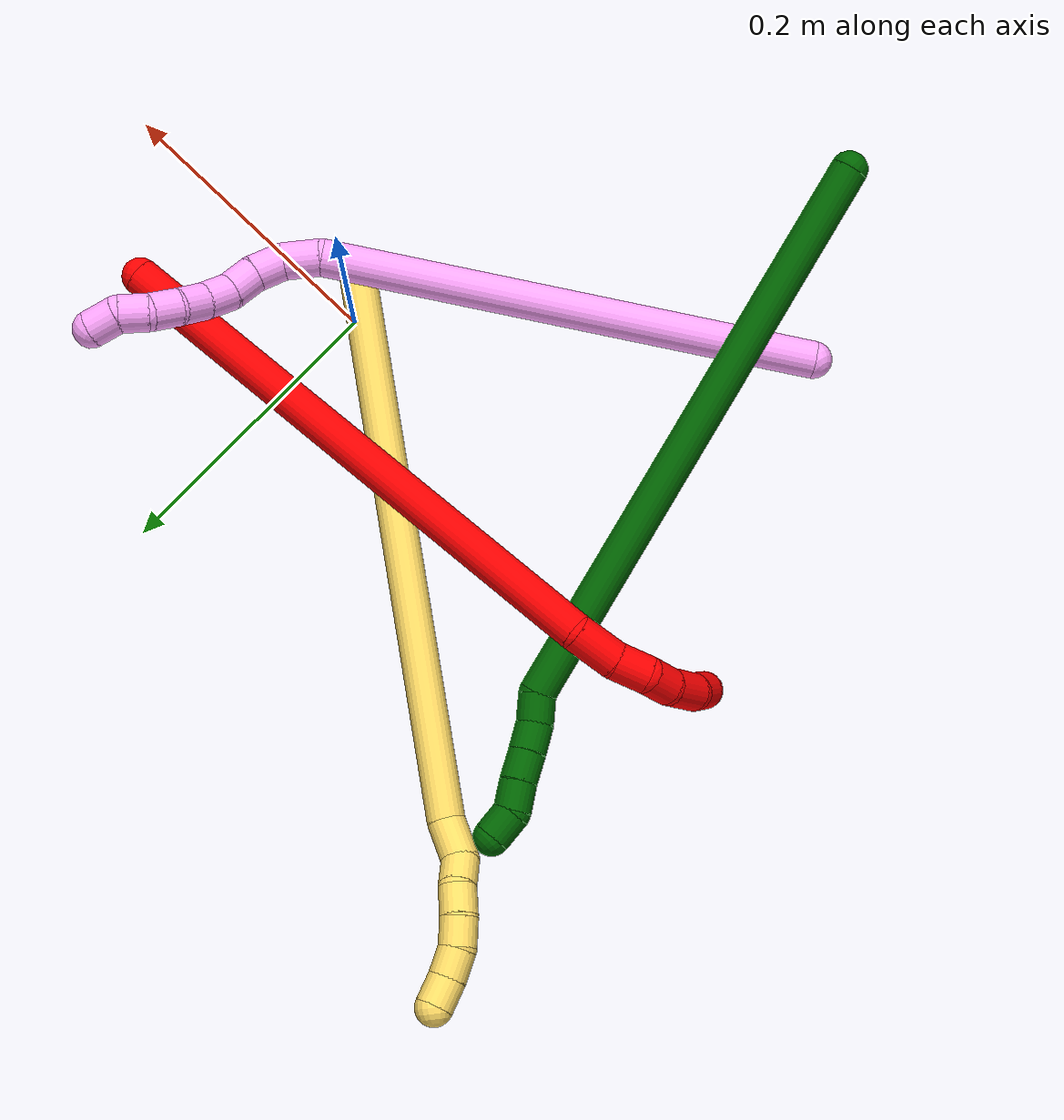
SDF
<sdf version="1.7">
 <world name="default">
  <model name="photoneo_s_sensor">
   <static>1</static>
   <pose>0 0 2 1.57079 1.57079 3.14159</pose>
   <link name="link">
    <inertial><mass>0.1</mass></inertial>
    <sensor name="sensor" type="depth">
     <update_rate>30</update_rate>
     <camera>
      <horizontal_fov>1.22</horizontal_fov>
      <image><width>1920</width><height>1200</height><format>B8G8R8</format></image>
      <clip><near>0.1</near><far>4</far></clip>
      <depth_camera><output>points</output></depth_camera>
     </camera>
     <plugin name="camera_plugin" filename="libgazebo_ros_depth_camera.so">
      <baseline>0.2</baseline>
      <alwaysOn>1</alwaysOn>
      <updateRate>0.0</updateRate>
      <cameraName>camera_ir</cameraName>
      <imageTopicName>/camera/color/image_raw</imageTopicName>
      <cameraInfoTopicName>/camera/color/camera_info</cameraInfoTopicName>
      <depthImageTopicName>/camera/depth/image_raw</depthImageTopicName>
      <depthImageCameraInfoTopicName>/camera/depth/camera_info</depthImageCameraInfoTopicName>
      <pointCloudTopicName>/camera/depth/points</pointCloudTopicName>
      <frameName>fr_optical</frameName>
      <pointCloudCutoff>0.1</pointCloudCutoff>
      <pointCloudCutoffMax>2.0</pointCloudCutoffMax>
      <distortionK1>0</distortionK1>
      <distortionK2>0</distortionK2>
      <distortionK3>0</distortionK3>
      <distortionT1>0</distortionT1>
      <distortionT2>0</distortionT2>
      <CxPrime>0</CxPrime>
      <Cx>0</Cx>
      <Cy>0</Cy>
      <focalLength>0</focalLength>
      <hackBaseline>0</hackBaseline>
     </plugin>
    </sensor>
   </link>
  </model>
  <model name="bin">
   <static>1</static>
   <link name="bottom">
    <collision name="collision-bottom">
     <pose>0 0 -0.01 0 -0 0</pose>
     <geometry><box><size>0.8 0.6 0.02</size></box></geometry>
     <surface>
      <friction><ode><mu>100</mu><mu2>100</mu2></ode></friction>
      <contact><collide_bitmask>65535</collide_bitmask></contact>
     </surface>
    </collision>
   </link>
   <link name="west_wall">
    <collision name="collision-west_wall">
     <pose>-0.41 0 0.1 0 -0 0</pose>
     <geometry><box><size>0.02 0.6 0.2</size></box></geometry>
     <surface>
      <friction><ode><mu>100</mu><mu2>100</mu2></ode></friction>
      <contact><collide_bitmask>65535</collide_bitmask></contact>
     </surface>
    </collision>
   </link>
   <link name="east_wall">
    <collision name="collision-east_wall">
     <pose>0.41 0 0.1 0 -0 0</pose>
     <geometry><box><size>0.02 0.6 0.2</size></box></geometry>
     <surface>
      <friction><ode><mu>100</mu><mu2>100</mu2></ode></friction>
      <contact><collide_bitmask>65535</collide_bitmask></contact>
     </surface>
    </collision>
   </link>
   <link name="south_wall">
    <collision name="collision-south_wall">
     <pose>0 -0.31 0.1 0 -0 0</pose>
     <geometry><box><size>0.8 0.02 0.2</size></box></geometry>
     <surface>
      <friction><ode><mu>100</mu><mu2>100</mu2></ode></friction>
      <contact><collide_bitmask>65535</collide_bitmask></contact>
     </surface>
    </collision>
   </link>
   <link name="north_wall">
    <collision name="collision-north_wall">
     <pose>0 0.31 0.1 0 -0 0</pose>
     <geometry><box><size>0.8 0.02 0.2</size></box></geometry>
     <surface>
      <friction><ode><mu>100</mu><mu2>100</mu2></ode></friction>
      <contact><collide_bitmask>65535</collide_bitmask></contact>
     </surface>
    </collision>
   </link>
  </model>
  <model name="2">
   <static>0</static>
   <link name="2">
    <collision name="collision-cylinder-e_1_1_4">
     <pose>-0.095447 -0.019869 -0.161637 3.01928 -0.530127 -2.69788</pose>
     <geometry><cylinder><radius>0.0125</radius><length>0.377526</length></cylinder></geometry>
     <surface>
      <friction><ode><mu>1.16</mu><mu2>1.16</mu2><slip1>0</slip1><slip2>0</slip2></ode></friction>
      <contact><ode><kp>1e+06</kp><kd>1</kd><max_vel>0</max_vel><min_depth>0.001</min_depth></ode></contact>
     </surface>
    </collision>
    <visual name="visual-cylinder-e_1_1_4">
     <pose>-0.095447 -0.019869 -0.161637 3.01928 -0.530127 -2.69788</pose>
     <geometry><cylinder><radius>0.0125</radius><length>0.377526</length></cylinder></geometry>
     <material><ambient>1 0 0 1</ambient></material>
    </visual>
    <collision name="collision-cylinder-e_2_4_5">
     <pose>-0.202606 -0.03852 -0.333355 -3.02144 -0.856577 2.87962</pose>
     <geometry><cylinder><radius>0.0125</radius><length>0.031002</length></cylinder></geometry>
     <surface>
      <friction><ode><mu>1.16</mu><mu2>1.16</mu2><slip1>0</slip1><slip2>0</slip2></ode></friction>
      <contact><ode><kp>1e+06</kp><kd>1</kd><max_vel>0</max_vel><min_depth>0.001</min_depth></ode></contact>
     </surface>
    </collision>
    <visual name="visual-cylinder-e_2_4_5">
     <pose>-0.202606 -0.03852 -0.333355 -3.02144 -0.856577 2.87962</pose>
     <geometry><cylinder><radius>0.0125</radius><length>0.031002</length></cylinder></geometry>
     <material><ambient>1 0 0 1</ambient></material>
    </visual>
    <collision name="collision-cylinder-e_3_5_6">
     <pose>-0.222318 -0.034117 -0.351203 -2.75236 -0.761257 2.22617</pose>
     <geometry><cylinder><radius>0.0125</radius><length>0.023195</length></cylinder></geometry>
     <surface>
      <friction><ode><mu>1.16</mu><mu2>1.16</mu2><slip1>0</slip1><slip2>0</slip2></ode></friction>
      <contact><ode><kp>1e+06</kp><kd>1</kd><max_vel>0</max_vel><min_depth>0.001</min_depth></ode></contact>
     </surface>
    </collision>
    <visual name="visual-cylinder-e_3_5_6">
     <pose>-0.222318 -0.034117 -0.351203 -2.75236 -0.761257 2.22617</pose>
     <geometry><cylinder><radius>0.0125</radius><length>0.023195</length></cylinder></geometry>
     <material><ambient>1 0 0 1</ambient></material>
    </visual>
    <collision name="collision-cylinder-e_4_6_7">
     <pose>-0.239754 -0.02749 -0.361431 -2.1913 -1.14935 1.79893</pose>
     <geometry><cylinder><radius>0.0125</radius><length>0.02068</length></cylinder></geometry>
     <surface>
      <friction><ode><mu>1.16</mu><mu2>1.16</mu2><slip1>0</slip1><slip2>0</slip2></ode></friction>
      <contact><ode><kp>1e+06</kp><kd>1</kd><max_vel>0</max_vel><min_depth>0.001</min_depth></ode></contact>
     </surface>
    </collision>
    <visual name="visual-cylinder-e_4_6_7">
     <pose>-0.239754 -0.02749 -0.361431 -2.1913 -1.14935 1.79893</pose>
     <geometry><cylinder><radius>0.0125</radius><length>0.02068</length></cylinder></geometry>
     <material><ambient>1 0 0 1</ambient></material>
    </visual>
    <collision name="collision-cylinder-e_5_7_8">
     <pose>-0.26088 -0.017034 -0.364435 -1.64823 -1.02904 1.09674</pose>
     <geometry><cylinder><radius>0.0125</radius><length>0.027288</length></cylinder></geometry>
     <surface>
      <friction><ode><mu>1.16</mu><mu2>1.16</mu2><slip1>0</slip1><slip2>0</slip2></ode></friction>
      <contact><ode><kp>1e+06</kp><kd>1</kd><max_vel>0</max_vel><min_depth>0.001</min_depth></ode></contact>
     </surface>
    </collision>
    <visual name="visual-cylinder-e_5_7_8">
     <pose>-0.26088 -0.017034 -0.364435 -1.64823 -1.02904 1.09674</pose>
     <geometry><cylinder><radius>0.0125</radius><length>0.027288</length></cylinder></geometry>
     <material><ambient>1 0 0 1</ambient></material>
    </visual>
    <collision name="collision-cylinder-e_6_8_2">
     <pose>-0.280403 -0.004183 -0.362206 -1.12727 -0.881058 0.579158</pose>
     <geometry><cylinder><radius>0.0125</radius><length>0.020309</length></cylinder></geometry>
     <surface>
      <friction><ode><mu>1.16</mu><mu2>1.16</mu2><slip1>0</slip1><slip2>0</slip2></ode></friction>
      <contact><ode><kp>1e+06</kp><kd>1</kd><max_vel>0</max_vel><min_depth>0.001</min_depth></ode></contact>
     </surface>
    </collision>
    <visual name="visual-cylinder-e_6_8_2">
     <pose>-0.280403 -0.004183 -0.362206 -1.12727 -0.881058 0.579158</pose>
     <geometry><cylinder><radius>0.0125</radius><length>0.020309</length></cylinder></geometry>
     <material><ambient>1 0 0 1</ambient></material>
    </visual>
    <collision name="collision-sphere-2">
     <pose>-0.288237 0.001654 -0.359433 0 -0 0</pose>
     <geometry><sphere><radius>0.0125</radius></sphere></geometry>
     <surface>
      <friction><ode><mu>1.16</mu><mu2>1.16</mu2><slip1>0</slip1><slip2>0</slip2></ode></friction>
      <contact><ode><kp>1e+06</kp><kd>1</kd><max_vel>0</max_vel><min_depth>0.001</min_depth></ode></contact>
     </surface>
    </collision>
    <visual name="visual-sphere-2">
     <pose>-0.288237 0.001654 -0.359433 0 -0 0</pose>
     <geometry><sphere><radius>0.0125</radius></sphere></geometry>
     <material><ambient>1 0 0 1</ambient></material>
    </visual>
    <collision name="collision-sphere-4">
     <pose>-0.190893 -0.039737 -0.323275 0 -0 0</pose>
     <geometry><sphere><radius>0.0125</radius></sphere></geometry>
     <surface>
      <friction><ode><mu>1.16</mu><mu2>1.16</mu2><slip1>0</slip1><slip2>0</slip2></ode></friction>
      <contact><ode><kp>1e+06</kp><kd>1</kd><max_vel>0</max_vel><min_depth>0.001</min_depth></ode></contact>
     </surface>
    </collision>
    <visual name="visual-sphere-4">
     <pose>-0.190893 -0.039737 -0.323275 0 -0 0</pose>
     <geometry><sphere><radius>0.0125</radius></sphere></geometry>
     <material><ambient>1 0 0 1</ambient></material>
    </visual>
    <collision name="collision-sphere-1">
     <geometry><sphere><radius>0.0125</radius></sphere></geometry>
     <surface>
      <friction><ode><mu>1.16</mu><mu2>1.16</mu2><slip1>0</slip1><slip2>0</slip2></ode></friction>
      <contact><ode><kp>1e+06</kp><kd>1</kd><max_vel>0</max_vel><min_depth>0.001</min_depth></ode></contact>
     </surface>
    </collision>
    <visual name="visual-sphere-1">
     <geometry><sphere><radius>0.0125</radius></sphere></geometry>
     <material><ambient>1 0 0 1</ambient></material>
    </visual>
    <collision name="collision-sphere-8">
     <pose>-0.27257 -0.010019 -0.364979 0 -0 0</pose>
     <geometry><sphere><radius>0.0125</radius></sphere></geometry>
     <surface>
      <friction><ode><mu>1.16</mu><mu2>1.16</mu2><slip1>0</slip1><slip2>0</slip2></ode></friction>
      <contact><ode><kp>1e+06</kp><kd>1</kd><max_vel>0</max_vel><min_depth>0.001</min_depth></ode></contact>
     </surface>
    </collision>
    <visual name="visual-sphere-8">
     <pose>-0.27257 -0.010019 -0.364979 0 -0 0</pose>
     <geometry><sphere><radius>0.0125</radius></sphere></geometry>
     <material><ambient>1 0 0 1</ambient></material>
    </visual>
    <collision name="collision-sphere-5">
     <pose>-0.214318 -0.037303 -0.343435 0 -0 0</pose>
     <geometry><sphere><radius>0.0125</radius></sphere></geometry>
     <surface>
      <friction><ode><mu>1.16</mu><mu2>1.16</mu2><slip1>0</slip1><slip2>0</slip2></ode></friction>
      <contact><ode><kp>1e+06</kp><kd>1</kd><max_vel>0</max_vel><min_depth>0.001</min_depth></ode></contact>
     </surface>
    </collision>
    <visual name="visual-sphere-5">
     <pose>-0.214318 -0.037303 -0.343435 0 -0 0</pose>
     <geometry><sphere><radius>0.0125</radius></sphere></geometry>
     <material><ambient>1 0 0 1</ambient></material>
    </visual>
    <collision name="collision-sphere-6">
     <pose>-0.230319 -0.030931 -0.358972 0 -0 0</pose>
     <geometry><sphere><radius>0.0125</radius></sphere></geometry>
     <surface>
      <friction><ode><mu>1.16</mu><mu2>1.16</mu2><slip1>0</slip1><slip2>0</slip2></ode></friction>
      <contact><ode><kp>1e+06</kp><kd>1</kd><max_vel>0</max_vel><min_depth>0.001</min_depth></ode></contact>
     </surface>
    </collision>
    <visual name="visual-sphere-6">
     <pose>-0.230319 -0.030931 -0.358972 0 -0 0</pose>
     <geometry><sphere><radius>0.0125</radius></sphere></geometry>
     <material><ambient>1 0 0 1</ambient></material>
    </visual>
    <collision name="collision-sphere-7">
     <pose>-0.24919 -0.024048 -0.363891 0 -0 0</pose>
     <geometry><sphere><radius>0.0125</radius></sphere></geometry>
     <surface>
      <friction><ode><mu>1.16</mu><mu2>1.16</mu2><slip1>0</slip1><slip2>0</slip2></ode></friction>
      <contact><ode><kp>1e+06</kp><kd>1</kd><max_vel>0</max_vel><min_depth>0.001</min_depth></ode></contact>
     </surface>
    </collision>
    <visual name="visual-sphere-7">
     <pose>-0.24919 -0.024048 -0.363891 0 -0 0</pose>
     <geometry><sphere><radius>0.0125</radius></sphere></geometry>
     <material><ambient>1 0 0 1</ambient></material>
    </visual>
    <inertial>
     <pose>-0.130486 -0.02121 -0.208557 0 -0 0</pose>
     <mass>0.5</mass>
     <inertia>
      <ixx>-0.005192</ixx>
      <ixy>0</ixy>
      <ixz>0</ixz>
      <iyy>0.002499</iyy>
      <iyz>0</iyz>
      <izz>0.002726</izz>
     </inertia>
    </inertial>
   </link>
   <pose>0.114908 0.08169 0.040193 -2.74317 -0.91797 -0.177213</pose>
  </model>
  <model name="4">
   <static>0</static>
   <link name="4">
    <collision name="collision-cylinder-e_1_1_4">
     <pose>0.116182 0.033681 -0.113941 -2.85418 0.774196 -2.45943</pose>
     <geometry><cylinder><radius>0.0125</radius><length>0.332356</length></cylinder></geometry>
     <surface>
      <friction><ode><mu>1.16</mu><mu2>1.16</mu2><slip1>0</slip1><slip2>0</slip2></ode></friction>
      <contact><ode><kp>1e+06</kp><kd>1</kd><max_vel>0</max_vel><min_depth>0.001</min_depth></ode></contact>
     </surface>
    </collision>
    <visual name="visual-cylinder-e_1_1_4">
     <pose>0.116182 0.033681 -0.113941 -2.85418 0.774196 -2.45943</pose>
     <geometry><cylinder><radius>0.0125</radius><length>0.332356</length></cylinder></geometry>
     <material><ambient>1 0.65098 0.996078 1</ambient></material>
    </visual>
    <collision name="collision-cylinder-e_2_4_5">
     <pose>0.241101 0.073817 -0.234927 -2.39986 0.740671 -1.56923</pose>
     <geometry><cylinder><radius>0.0125</radius><length>0.025895</length></cylinder></geometry>
     <surface>
      <friction><ode><mu>1.16</mu><mu2>1.16</mu2><slip1>0</slip1><slip2>0</slip2></ode></friction>
      <contact><ode><kp>1e+06</kp><kd>1</kd><max_vel>0</max_vel><min_depth>0.001</min_depth></ode></contact>
     </surface>
    </collision>
    <visual name="visual-cylinder-e_2_4_5">
     <pose>0.241101 0.073817 -0.234927 -2.39986 0.740671 -1.56923</pose>
     <geometry><cylinder><radius>0.0125</radius><length>0.025895</length></cylinder></geometry>
     <material><ambient>1 0.65098 0.996078 1</ambient></material>
    </visual>
    <collision name="collision-cylinder-e_3_5_6">
     <pose>0.259043 0.08537 -0.243465 -1.8556 1.04737 -1.31332</pose>
     <geometry><cylinder><radius>0.0125</radius><length>0.021256</length></cylinder></geometry>
     <surface>
      <friction><ode><mu>1.16</mu><mu2>1.16</mu2><slip1>0</slip1><slip2>0</slip2></ode></friction>
      <contact><ode><kp>1e+06</kp><kd>1</kd><max_vel>0</max_vel><min_depth>0.001</min_depth></ode></contact>
     </surface>
    </collision>
    <visual name="visual-cylinder-e_3_5_6">
     <pose>0.259043 0.08537 -0.243465 -1.8556 1.04737 -1.31332</pose>
     <geometry><cylinder><radius>0.0125</radius><length>0.021256</length></cylinder></geometry>
     <material><ambient>1 0.65098 0.996078 1</ambient></material>
    </visual>
    <collision name="collision-cylinder-e_4_6_7">
     <pose>0.277049 0.095346 -0.243586 -1.29662 1.04852 -0.825718</pose>
     <geometry><cylinder><radius>0.0125</radius><length>0.020311</length></cylinder></geometry>
     <surface>
      <friction><ode><mu>1.16</mu><mu2>1.16</mu2><slip1>0</slip1><slip2>0</slip2></ode></friction>
      <contact><ode><kp>1e+06</kp><kd>1</kd><max_vel>0</max_vel><min_depth>0.001</min_depth></ode></contact>
     </surface>
    </collision>
    <visual name="visual-cylinder-e_4_6_7">
     <pose>0.277049 0.095346 -0.243586 -1.29662 1.04852 -0.825718</pose>
     <geometry><cylinder><radius>0.0125</radius><length>0.020311</length></cylinder></geometry>
     <material><ambient>1 0.65098 0.996078 1</ambient></material>
    </visual>
    <collision name="collision-cylinder-e_5_7_8">
     <pose>0.295659 0.102517 -0.242291 -1.6041 1.34087 -1.37342</pose>
     <geometry><cylinder><radius>0.0125</radius><length>0.020146</length></cylinder></geometry>
     <surface>
      <friction><ode><mu>1.16</mu><mu2>1.16</mu2><slip1>0</slip1><slip2>0</slip2></ode></friction>
      <contact><ode><kp>1e+06</kp><kd>1</kd><max_vel>0</max_vel><min_depth>0.001</min_depth></ode></contact>
     </surface>
    </collision>
    <visual name="visual-cylinder-e_5_7_8">
     <pose>0.295659 0.102517 -0.242291 -1.6041 1.34087 -1.37342</pose>
     <geometry><cylinder><radius>0.0125</radius><length>0.020146</length></cylinder></geometry>
     <material><ambient>1 0.65098 0.996078 1</ambient></material>
    </visual>
    <collision name="collision-cylinder-e_6_8_9">
     <pose>0.31545 0.105457 -0.242605 -1.92331 1.50197 -1.85793</pose>
     <geometry><cylinder><radius>0.0125</radius><length>0.020015</length></cylinder></geometry>
     <surface>
      <friction><ode><mu>1.16</mu><mu2>1.16</mu2><slip1>0</slip1><slip2>0</slip2></ode></friction>
      <contact><ode><kp>1e+06</kp><kd>1</kd><max_vel>0</max_vel><min_depth>0.001</min_depth></ode></contact>
     </surface>
    </collision>
    <visual name="visual-cylinder-e_6_8_9">
     <pose>0.31545 0.105457 -0.242605 -1.92331 1.50197 -1.85793</pose>
     <geometry><cylinder><radius>0.0125</radius><length>0.020015</length></cylinder></geometry>
     <material><ambient>1 0.65098 0.996078 1</ambient></material>
    </visual>
    <collision name="collision-cylinder-e_7_9_10">
     <pose>0.335026 0.108174 -0.244806 -2.32945 1.28165 -2.09567</pose>
     <geometry><cylinder><radius>0.0125</radius><length>0.020015</length></cylinder></geometry>
     <surface>
      <friction><ode><mu>1.16</mu><mu2>1.16</mu2><slip1>0</slip1><slip2>0</slip2></ode></friction>
      <contact><ode><kp>1e+06</kp><kd>1</kd><max_vel>0</max_vel><min_depth>0.001</min_depth></ode></contact>
     </surface>
    </collision>
    <visual name="visual-cylinder-e_7_9_10">
     <pose>0.335026 0.108174 -0.244806 -2.32945 1.28165 -2.09567</pose>
     <geometry><cylinder><radius>0.0125</radius><length>0.020015</length></cylinder></geometry>
     <material><ambient>1 0.65098 0.996078 1</ambient></material>
    </visual>
    <collision name="collision-cylinder-e_8_10_11">
     <pose>0.35265 0.113713 -0.251617 -2.52063 0.932322 -2.00622</pose>
     <geometry><cylinder><radius>0.0125</radius><length>0.020006</length></cylinder></geometry>
     <surface>
      <friction><ode><mu>1.16</mu><mu2>1.16</mu2><slip1>0</slip1><slip2>0</slip2></ode></friction>
      <contact><ode><kp>1e+06</kp><kd>1</kd><max_vel>0</max_vel><min_depth>0.001</min_depth></ode></contact>
     </surface>
    </collision>
    <visual name="visual-cylinder-e_8_10_11">
     <pose>0.35265 0.113713 -0.251617 -2.52063 0.932322 -2.00622</pose>
     <geometry><cylinder><radius>0.0125</radius><length>0.020006</length></cylinder></geometry>
     <material><ambient>1 0.65098 0.996078 1</ambient></material>
    </visual>
    <collision name="collision-cylinder-e_9_11_2">
     <pose>0.366871 0.124656 -0.258884 -1.88366 0.667242 -0.889131</pose>
     <geometry><cylinder><radius>0.0125</radius><length>0.02</length></cylinder></geometry>
     <surface>
      <friction><ode><mu>1.16</mu><mu2>1.16</mu2><slip1>0</slip1><slip2>0</slip2></ode></friction>
      <contact><ode><kp>1e+06</kp><kd>1</kd><max_vel>0</max_vel><min_depth>0.001</min_depth></ode></contact>
     </surface>
    </collision>
    <visual name="visual-cylinder-e_9_11_2">
     <pose>0.366871 0.124656 -0.258884 -1.88366 0.667242 -0.889131</pose>
     <geometry><cylinder><radius>0.0125</radius><length>0.02</length></cylinder></geometry>
     <material><ambient>1 0.65098 0.996078 1</ambient></material>
    </visual>
    <collision name="collision-sphere-2">
     <pose>0.373059 0.13213 -0.261301 0 -0 0</pose>
     <geometry><sphere><radius>0.0125</radius></sphere></geometry>
     <surface>
      <friction><ode><mu>1.16</mu><mu2>1.16</mu2><slip1>0</slip1><slip2>0</slip2></ode></friction>
      <contact><ode><kp>1e+06</kp><kd>1</kd><max_vel>0</max_vel><min_depth>0.001</min_depth></ode></contact>
     </surface>
    </collision>
    <visual name="visual-sphere-2">
     <pose>0.373059 0.13213 -0.261301 0 -0 0</pose>
     <geometry><sphere><radius>0.0125</radius></sphere></geometry>
     <material><ambient>1 0.65098 0.996078 1</ambient></material>
    </visual>
    <collision name="collision-sphere-11">
     <pose>0.360683 0.117182 -0.256466 0 -0 0</pose>
     <geometry><sphere><radius>0.0125</radius></sphere></geometry>
     <surface>
      <friction><ode><mu>1.16</mu><mu2>1.16</mu2><slip1>0</slip1><slip2>0</slip2></ode></friction>
      <contact><ode><kp>1e+06</kp><kd>1</kd><max_vel>0</max_vel><min_depth>0.001</min_depth></ode></contact>
     </surface>
    </collision>
    <visual name="visual-sphere-11">
     <pose>0.360683 0.117182 -0.256466 0 -0 0</pose>
     <geometry><sphere><radius>0.0125</radius></sphere></geometry>
     <material><ambient>1 0.65098 0.996078 1</ambient></material>
    </visual>
    <collision name="collision-sphere-10">
     <pose>0.344618 0.110245 -0.246769 0 -0 0</pose>
     <geometry><sphere><radius>0.0125</radius></sphere></geometry>
     <surface>
      <friction><ode><mu>1.16</mu><mu2>1.16</mu2><slip1>0</slip1><slip2>0</slip2></ode></friction>
      <contact><ode><kp>1e+06</kp><kd>1</kd><max_vel>0</max_vel><min_depth>0.001</min_depth></ode></contact>
     </surface>
    </collision>
    <visual name="visual-sphere-10">
     <pose>0.344618 0.110245 -0.246769 0 -0 0</pose>
     <geometry><sphere><radius>0.0125</radius></sphere></geometry>
     <material><ambient>1 0.65098 0.996078 1</ambient></material>
    </visual>
    <collision name="collision-sphere-9">
     <pose>0.325434 0.106103 -0.242843 0 -0 0</pose>
     <geometry><sphere><radius>0.0125</radius></sphere></geometry>
     <surface>
      <friction><ode><mu>1.16</mu><mu2>1.16</mu2><slip1>0</slip1><slip2>0</slip2></ode></friction>
      <contact><ode><kp>1e+06</kp><kd>1</kd><max_vel>0</max_vel><min_depth>0.001</min_depth></ode></contact>
     </surface>
    </collision>
    <visual name="visual-sphere-9">
     <pose>0.325434 0.106103 -0.242843 0 -0 0</pose>
     <geometry><sphere><radius>0.0125</radius></sphere></geometry>
     <material><ambient>1 0.65098 0.996078 1</ambient></material>
    </visual>
    <collision name="collision-sphere-4">
     <pose>0.232364 0.067361 -0.227882 0 -0 0</pose>
     <geometry><sphere><radius>0.0125</radius></sphere></geometry>
     <surface>
      <friction><ode><mu>1.16</mu><mu2>1.16</mu2><slip1>0</slip1><slip2>0</slip2></ode></friction>
      <contact><ode><kp>1e+06</kp><kd>1</kd><max_vel>0</max_vel><min_depth>0.001</min_depth></ode></contact>
     </surface>
    </collision>
    <visual name="visual-sphere-4">
     <pose>0.232364 0.067361 -0.227882 0 -0 0</pose>
     <geometry><sphere><radius>0.0125</radius></sphere></geometry>
     <material><ambient>1 0.65098 0.996078 1</ambient></material>
    </visual>
    <collision name="collision-sphere-1">
     <geometry><sphere><radius>0.0125</radius></sphere></geometry>
     <surface>
      <friction><ode><mu>1.16</mu><mu2>1.16</mu2><slip1>0</slip1><slip2>0</slip2></ode></friction>
      <contact><ode><kp>1e+06</kp><kd>1</kd><max_vel>0</max_vel><min_depth>0.001</min_depth></ode></contact>
     </surface>
    </collision>
    <visual name="visual-sphere-1">
     <geometry><sphere><radius>0.0125</radius></sphere></geometry>
     <material><ambient>1 0.65098 0.996078 1</ambient></material>
    </visual>
    <collision name="collision-sphere-8">
     <pose>0.305467 0.104811 -0.242367 0 -0 0</pose>
     <geometry><sphere><radius>0.0125</radius></sphere></geometry>
     <surface>
      <friction><ode><mu>1.16</mu><mu2>1.16</mu2><slip1>0</slip1><slip2>0</slip2></ode></friction>
      <contact><ode><kp>1e+06</kp><kd>1</kd><max_vel>0</max_vel><min_depth>0.001</min_depth></ode></contact>
     </surface>
    </collision>
    <visual name="visual-sphere-8">
     <pose>0.305467 0.104811 -0.242367 0 -0 0</pose>
     <geometry><sphere><radius>0.0125</radius></sphere></geometry>
     <material><ambient>1 0.65098 0.996078 1</ambient></material>
    </visual>
    <collision name="collision-sphere-5">
     <pose>0.249838 0.080272 -0.241973 0 -0 0</pose>
     <geometry><sphere><radius>0.0125</radius></sphere></geometry>
     <surface>
      <friction><ode><mu>1.16</mu><mu2>1.16</mu2><slip1>0</slip1><slip2>0</slip2></ode></friction>
      <contact><ode><kp>1e+06</kp><kd>1</kd><max_vel>0</max_vel><min_depth>0.001</min_depth></ode></contact>
     </surface>
    </collision>
    <visual name="visual-sphere-5">
     <pose>0.249838 0.080272 -0.241973 0 -0 0</pose>
     <geometry><sphere><radius>0.0125</radius></sphere></geometry>
     <material><ambient>1 0.65098 0.996078 1</ambient></material>
    </visual>
    <collision name="collision-sphere-6">
     <pose>0.268248 0.090469 -0.244958 0 -0 0</pose>
     <geometry><sphere><radius>0.0125</radius></sphere></geometry>
     <surface>
      <friction><ode><mu>1.16</mu><mu2>1.16</mu2><slip1>0</slip1><slip2>0</slip2></ode></friction>
      <contact><ode><kp>1e+06</kp><kd>1</kd><max_vel>0</max_vel><min_depth>0.001</min_depth></ode></contact>
     </surface>
    </collision>
    <visual name="visual-sphere-6">
     <pose>0.268248 0.090469 -0.244958 0 -0 0</pose>
     <geometry><sphere><radius>0.0125</radius></sphere></geometry>
     <material><ambient>1 0.65098 0.996078 1</ambient></material>
    </visual>
    <collision name="collision-sphere-7">
     <pose>0.285851 0.100222 -0.242214 0 -0 0</pose>
     <geometry><sphere><radius>0.0125</radius></sphere></geometry>
     <surface>
      <friction><ode><mu>1.16</mu><mu2>1.16</mu2><slip1>0</slip1><slip2>0</slip2></ode></friction>
      <contact><ode><kp>1e+06</kp><kd>1</kd><max_vel>0</max_vel><min_depth>0.001</min_depth></ode></contact>
     </surface>
    </collision>
    <visual name="visual-sphere-7">
     <pose>0.285851 0.100222 -0.242214 0 -0 0</pose>
     <geometry><sphere><radius>0.0125</radius></sphere></geometry>
     <material><ambient>1 0.65098 0.996078 1</ambient></material>
    </visual>
    <inertial>
     <pose>0.178717 0.055932 -0.157846 0 -0 0</pose>
     <mass>0.5</mass>
     <inertia>
      <ixx>-0.003066</ixx>
      <ixy>0</ixy>
      <ixz>0</ixz>
      <iyy>0.0013</iyy>
      <iyz>0</iyz>
      <izz>-0.002807</izz>
     </inertia>
    </inertial>
   </link>
   <pose>-0.24206 -0.19002 0.021512 -1.22379 -0.665988 1.1989</pose>
  </model>
  <model name="5">
   <static>0</static>
   <link name="5">
    <collision name="collision-cylinder-e_1_1_4">
     <pose>-0.006858 0.007203 0.185861 -0.038734 -0.036853 0.000714</pose>
     <geometry><cylinder><radius>0.0125</radius><length>0.372255</length></cylinder></geometry>
     <surface>
      <friction><ode><mu>1.16</mu><mu2>1.16</mu2><slip1>0</slip1><slip2>0</slip2></ode></friction>
      <contact><ode><kp>1e+06</kp><kd>1</kd><max_vel>0</max_vel><min_depth>0.001</min_depth></ode></contact>
     </surface>
    </collision>
    <visual name="visual-cylinder-e_1_1_4">
     <pose>-0.006858 0.007203 0.185861 -0.038734 -0.036853 0.000714</pose>
     <geometry><cylinder><radius>0.0125</radius><length>0.372255</length></cylinder></geometry>
     <material><ambient>1 0.858824 0.4 1</ambient></material>
    </visual>
    <collision name="collision-cylinder-e_2_4_5">
     <pose>-0.01703 0.017399 0.384782 -0.225328 -0.242511 0.027572</pose>
     <geometry><cylinder><radius>0.0125</radius><length>0.027603</length></cylinder></geometry>
     <surface>
      <friction><ode><mu>1.16</mu><mu2>1.16</mu2><slip1>0</slip1><slip2>0</slip2></ode></friction>
      <contact><ode><kp>1e+06</kp><kd>1</kd><max_vel>0</max_vel><min_depth>0.001</min_depth></ode></contact>
     </surface>
    </collision>
    <visual name="visual-cylinder-e_2_4_5">
     <pose>-0.01703 0.017399 0.384782 -0.225328 -0.242511 0.027572</pose>
     <geometry><cylinder><radius>0.0125</radius><length>0.027603</length></cylinder></geometry>
     <material><ambient>1 0.858824 0.4 1</ambient></material>
    </visual>
    <collision name="collision-cylinder-e_3_5_6">
     <pose>-0.025322 0.018276 0.406327 0.244324 -0.517401 -0.064956</pose>
     <geometry><cylinder><radius>0.0125</radius><length>0.020129</length></cylinder></geometry>
     <surface>
      <friction><ode><mu>1.16</mu><mu2>1.16</mu2><slip1>0</slip1><slip2>0</slip2></ode></friction>
      <contact><ode><kp>1e+06</kp><kd>1</kd><max_vel>0</max_vel><min_depth>0.001</min_depth></ode></contact>
     </surface>
    </collision>
    <visual name="visual-cylinder-e_3_5_6">
     <pose>-0.025322 0.018276 0.406327 0.244324 -0.517401 -0.064956</pose>
     <geometry><cylinder><radius>0.0125</radius><length>0.020129</length></cylinder></geometry>
     <material><ambient>1 0.858824 0.4 1</ambient></material>
    </visual>
    <collision name="collision-cylinder-e_4_6_7">
     <pose>-0.032894 0.015453 0.424452 0.073228 -0.262275 -0.009663</pose>
     <geometry><cylinder><radius>0.0125</radius><length>0.020011</length></cylinder></geometry>
     <surface>
      <friction><ode><mu>1.16</mu><mu2>1.16</mu2><slip1>0</slip1><slip2>0</slip2></ode></friction>
      <contact><ode><kp>1e+06</kp><kd>1</kd><max_vel>0</max_vel><min_depth>0.001</min_depth></ode></contact>
     </surface>
    </collision>
    <visual name="visual-cylinder-e_4_6_7">
     <pose>-0.032894 0.015453 0.424452 0.073228 -0.262275 -0.009663</pose>
     <geometry><cylinder><radius>0.0125</radius><length>0.020011</length></cylinder></geometry>
     <material><ambient>1 0.858824 0.4 1</ambient></material>
    </visual>
    <collision name="collision-cylinder-e_5_7_8">
     <pose>-0.03654 0.013015 0.443883 0.174986 -0.105359 -0.00925</pose>
     <geometry><cylinder><radius>0.0125</radius><length>0.02</length></cylinder></geometry>
     <surface>
      <friction><ode><mu>1.16</mu><mu2>1.16</mu2><slip1>0</slip1><slip2>0</slip2></ode></friction>
      <contact><ode><kp>1e+06</kp><kd>1</kd><max_vel>0</max_vel><min_depth>0.001</min_depth></ode></contact>
     </surface>
    </collision>
    <visual name="visual-cylinder-e_5_7_8">
     <pose>-0.03654 0.013015 0.443883 0.174986 -0.105359 -0.00925</pose>
     <geometry><cylinder><radius>0.0125</radius><length>0.02</length></cylinder></geometry>
     <material><ambient>1 0.858824 0.4 1</ambient></material>
    </visual>
    <collision name="collision-cylinder-e_6_8_9">
     <pose>-0.037934 0.006889 0.462653 0.455228 -0.034249 -0.007934</pose>
     <geometry><cylinder><radius>0.0125</radius><length>0.020002</length></cylinder></geometry>
     <surface>
      <friction><ode><mu>1.16</mu><mu2>1.16</mu2><slip1>0</slip1><slip2>0</slip2></ode></friction>
      <contact><ode><kp>1e+06</kp><kd>1</kd><max_vel>0</max_vel><min_depth>0.001</min_depth></ode></contact>
     </surface>
    </collision>
    <visual name="visual-cylinder-e_6_8_9">
     <pose>-0.037934 0.006889 0.462653 0.455228 -0.034249 -0.007934</pose>
     <geometry><cylinder><radius>0.0125</radius><length>0.020002</length></cylinder></geometry>
     <material><ambient>1 0.858824 0.4 1</ambient></material>
    </visual>
    <collision name="collision-cylinder-e_7_9_2">
     <pose>-0.039458 -0.002754 0.48006 0.556957 -0.118354 -0.033875</pose>
     <geometry><cylinder><radius>0.0125</radius><length>0.02</length></cylinder></geometry>
     <surface>
      <friction><ode><mu>1.16</mu><mu2>1.16</mu2><slip1>0</slip1><slip2>0</slip2></ode></friction>
      <contact><ode><kp>1e+06</kp><kd>1</kd><max_vel>0</max_vel><min_depth>0.001</min_depth></ode></contact>
     </surface>
    </collision>
    <visual name="visual-cylinder-e_7_9_2">
     <pose>-0.039458 -0.002754 0.48006 0.556957 -0.118354 -0.033875</pose>
     <geometry><cylinder><radius>0.0125</radius><length>0.02</length></cylinder></geometry>
     <material><ambient>1 0.858824 0.4 1</ambient></material>
    </visual>
    <collision name="collision-sphere-2">
     <pose>-0.040638 -0.008004 0.488489 0 -0 0</pose>
     <geometry><sphere><radius>0.0125</radius></sphere></geometry>
     <surface>
      <friction><ode><mu>1.16</mu><mu2>1.16</mu2><slip1>0</slip1><slip2>0</slip2></ode></friction>
      <contact><ode><kp>1e+06</kp><kd>1</kd><max_vel>0</max_vel><min_depth>0.001</min_depth></ode></contact>
     </surface>
    </collision>
    <visual name="visual-sphere-2">
     <pose>-0.040638 -0.008004 0.488489 0 -0 0</pose>
     <geometry><sphere><radius>0.0125</radius></sphere></geometry>
     <material><ambient>1 0.858824 0.4 1</ambient></material>
    </visual>
    <collision name="collision-sphere-9">
     <pose>-0.038277 0.002495 0.47163 0 -0 0</pose>
     <geometry><sphere><radius>0.0125</radius></sphere></geometry>
     <surface>
      <friction><ode><mu>1.16</mu><mu2>1.16</mu2><slip1>0</slip1><slip2>0</slip2></ode></friction>
      <contact><ode><kp>1e+06</kp><kd>1</kd><max_vel>0</max_vel><min_depth>0.001</min_depth></ode></contact>
     </surface>
    </collision>
    <visual name="visual-sphere-9">
     <pose>-0.038277 0.002495 0.47163 0 -0 0</pose>
     <geometry><sphere><radius>0.0125</radius></sphere></geometry>
     <material><ambient>1 0.858824 0.4 1</ambient></material>
    </visual>
    <collision name="collision-sphere-4">
     <pose>-0.013715 0.014406 0.371723 0 -0 0</pose>
     <geometry><sphere><radius>0.0125</radius></sphere></geometry>
     <surface>
      <friction><ode><mu>1.16</mu><mu2>1.16</mu2><slip1>0</slip1><slip2>0</slip2></ode></friction>
      <contact><ode><kp>1e+06</kp><kd>1</kd><max_vel>0</max_vel><min_depth>0.001</min_depth></ode></contact>
     </surface>
    </collision>
    <visual name="visual-sphere-4">
     <pose>-0.013715 0.014406 0.371723 0 -0 0</pose>
     <geometry><sphere><radius>0.0125</radius></sphere></geometry>
     <material><ambient>1 0.858824 0.4 1</ambient></material>
    </visual>
    <collision name="collision-sphere-1">
     <geometry><sphere><radius>0.0125</radius></sphere></geometry>
     <surface>
      <friction><ode><mu>1.16</mu><mu2>1.16</mu2><slip1>0</slip1><slip2>0</slip2></ode></friction>
      <contact><ode><kp>1e+06</kp><kd>1</kd><max_vel>0</max_vel><min_depth>0.001</min_depth></ode></contact>
     </surface>
    </collision>
    <visual name="visual-sphere-1">
     <geometry><sphere><radius>0.0125</radius></sphere></geometry>
     <material><ambient>1 0.858824 0.4 1</ambient></material>
    </visual>
    <collision name="collision-sphere-8">
     <pose>-0.037592 0.011284 0.453676 0 -0 0</pose>
     <geometry><sphere><radius>0.0125</radius></sphere></geometry>
     <surface>
      <friction><ode><mu>1.16</mu><mu2>1.16</mu2><slip1>0</slip1><slip2>0</slip2></ode></friction>
      <contact><ode><kp>1e+06</kp><kd>1</kd><max_vel>0</max_vel><min_depth>0.001</min_depth></ode></contact>
     </surface>
    </collision>
    <visual name="visual-sphere-8">
     <pose>-0.037592 0.011284 0.453676 0 -0 0</pose>
     <geometry><sphere><radius>0.0125</radius></sphere></geometry>
     <material><ambient>1 0.858824 0.4 1</ambient></material>
    </visual>
    <collision name="collision-sphere-5">
     <pose>-0.020344 0.020392 0.39784 0 -0 0</pose>
     <geometry><sphere><radius>0.0125</radius></sphere></geometry>
     <surface>
      <friction><ode><mu>1.16</mu><mu2>1.16</mu2><slip1>0</slip1><slip2>0</slip2></ode></friction>
      <contact><ode><kp>1e+06</kp><kd>1</kd><max_vel>0</max_vel><min_depth>0.001</min_depth></ode></contact>
     </surface>
    </collision>
    <visual name="visual-sphere-5">
     <pose>-0.020344 0.020392 0.39784 0 -0 0</pose>
     <geometry><sphere><radius>0.0125</radius></sphere></geometry>
     <material><ambient>1 0.858824 0.4 1</ambient></material>
    </visual>
    <collision name="collision-sphere-6">
     <pose>-0.0303 0.016161 0.414815 0 -0 0</pose>
     <geometry><sphere><radius>0.0125</radius></sphere></geometry>
     <surface>
      <friction><ode><mu>1.16</mu><mu2>1.16</mu2><slip1>0</slip1><slip2>0</slip2></ode></friction>
      <contact><ode><kp>1e+06</kp><kd>1</kd><max_vel>0</max_vel><min_depth>0.001</min_depth></ode></contact>
     </surface>
    </collision>
    <visual name="visual-sphere-6">
     <pose>-0.0303 0.016161 0.414815 0 -0 0</pose>
     <geometry><sphere><radius>0.0125</radius></sphere></geometry>
     <material><ambient>1 0.858824 0.4 1</ambient></material>
    </visual>
    <collision name="collision-sphere-7">
     <pose>-0.035489 0.014746 0.43409 0 -0 0</pose>
     <geometry><sphere><radius>0.0125</radius></sphere></geometry>
     <surface>
      <friction><ode><mu>1.16</mu><mu2>1.16</mu2><slip1>0</slip1><slip2>0</slip2></ode></friction>
      <contact><ode><kp>1e+06</kp><kd>1</kd><max_vel>0</max_vel><min_depth>0.001</min_depth></ode></contact>
     </surface>
    </collision>
    <visual name="visual-sphere-7">
     <pose>-0.035489 0.014746 0.43409 0 -0 0</pose>
     <geometry><sphere><radius>0.0125</radius></sphere></geometry>
     <material><ambient>1 0.858824 0.4 1</ambient></material>
    </visual>
    <inertial>
     <pose>-0.012939 0.008363 0.248429 0 -0 0</pose>
     <mass>0.5</mass>
     <inertia><ixx>0.00432</ixx><ixy>0</ixy><ixz>0</ixz><iyy>0.004322</iyy><iyz>0</iyz><izz>3.4e-05</izz></inertia>
    </inertial>
   </link>
   <pose>0.019795 -0.023827 0.011498 -2.3273 1.52245 0.136534</pose>
  </model>
  <model name="6">
   <static>0</static>
   <link name="6">
    <collision name="collision-cylinder-e_1_1_4">
     <pose>-0.046163 0.030069 -0.191771 -2.98606 -0.233474 1.96862</pose>
     <geometry><cylinder><radius>0.0125</radius><length>0.399056</length></cylinder></geometry>
     <surface>
      <friction><ode><mu>1.16</mu><mu2>1.16</mu2><slip1>0</slip1><slip2>0</slip2></ode></friction>
      <contact><ode><kp>1e+06</kp><kd>1</kd><max_vel>0</max_vel><min_depth>0.001</min_depth></ode></contact>
     </surface>
    </collision>
    <visual name="visual-cylinder-e_1_1_4">
     <pose>-0.046163 0.030069 -0.191771 -2.98606 -0.233474 1.96862</pose>
     <geometry><cylinder><radius>0.0125</radius><length>0.399056</length></cylinder></geometry>
     <material><ambient>0 0.392157 0.003922 1</ambient></material>
    </visual>
    <collision name="collision-cylinder-e_2_4_5">
     <pose>-0.096124 0.065534 -0.391257 -2.53128 -0.38359 1.10487</pose>
     <geometry><cylinder><radius>0.0125</radius><length>0.020302</length></cylinder></geometry>
     <surface>
      <friction><ode><mu>1.16</mu><mu2>1.16</mu2><slip1>0</slip1><slip2>0</slip2></ode></friction>
      <contact><ode><kp>1e+06</kp><kd>1</kd><max_vel>0</max_vel><min_depth>0.001</min_depth></ode></contact>
     </surface>
    </collision>
    <visual name="visual-cylinder-e_2_4_5">
     <pose>-0.096124 0.065534 -0.391257 -2.53128 -0.38359 1.10487</pose>
     <geometry><cylinder><radius>0.0125</radius><length>0.020302</length></cylinder></geometry>
     <material><ambient>0 0.392157 0.003922 1</ambient></material>
    </visual>
    <collision name="collision-cylinder-e_3_5_6">
     <pose>-0.101151 0.075963 -0.407547 -2.61081 -0.122813 0.444929</pose>
     <geometry><cylinder><radius>0.0125</radius><length>0.02004</length></cylinder></geometry>
     <surface>
      <friction><ode><mu>1.16</mu><mu2>1.16</mu2><slip1>0</slip1><slip2>0</slip2></ode></friction>
      <contact><ode><kp>1e+06</kp><kd>1</kd><max_vel>0</max_vel><min_depth>0.001</min_depth></ode></contact>
     </surface>
    </collision>
    <visual name="visual-cylinder-e_3_5_6">
     <pose>-0.101151 0.075963 -0.407547 -2.61081 -0.122813 0.444929</pose>
     <geometry><cylinder><radius>0.0125</radius><length>0.02004</length></cylinder></geometry>
     <material><ambient>0 0.392157 0.003922 1</ambient></material>
    </visual>
    <collision name="collision-cylinder-e_4_6_7">
     <pose>-0.103785 0.085704 -0.424927 -2.65056 -0.13996 0.545528</pose>
     <geometry><cylinder><radius>0.0125</radius><length>0.020163</length></cylinder></geometry>
     <surface>
      <friction><ode><mu>1.16</mu><mu2>1.16</mu2><slip1>0</slip1><slip2>0</slip2></ode></friction>
      <contact><ode><kp>1e+06</kp><kd>1</kd><max_vel>0</max_vel><min_depth>0.001</min_depth></ode></contact>
     </surface>
    </collision>
    <visual name="visual-cylinder-e_4_6_7">
     <pose>-0.103785 0.085704 -0.424927 -2.65056 -0.13996 0.545528</pose>
     <geometry><cylinder><radius>0.0125</radius><length>0.020163</length></cylinder></geometry>
     <material><ambient>0 0.392157 0.003922 1</ambient></material>
    </visual>
    <collision name="collision-cylinder-e_5_7_8">
     <pose>-0.107225 0.095618 -0.442028 -2.58126 -0.204691 0.685683</pose>
     <geometry><cylinder><radius>0.0125</radius><length>0.02001</length></cylinder></geometry>
     <surface>
      <friction><ode><mu>1.16</mu><mu2>1.16</mu2><slip1>0</slip1><slip2>0</slip2></ode></friction>
      <contact><ode><kp>1e+06</kp><kd>1</kd><max_vel>0</max_vel><min_depth>0.001</min_depth></ode></contact>
     </surface>
    </collision>
    <visual name="visual-cylinder-e_5_7_8">
     <pose>-0.107225 0.095618 -0.442028 -2.58126 -0.204691 0.685683</pose>
     <geometry><cylinder><radius>0.0125</radius><length>0.02001</length></cylinder></geometry>
     <material><ambient>0 0.392157 0.003922 1</ambient></material>
    </visual>
    <collision name="collision-cylinder-e_6_8_2">
     <pose>-0.110157 0.101501 -0.460478 -3.075 -0.08814 1.84778</pose>
     <geometry><cylinder><radius>0.0125</radius><length>0.020429</length></cylinder></geometry>
     <surface>
      <friction><ode><mu>1.16</mu><mu2>1.16</mu2><slip1>0</slip1><slip2>0</slip2></ode></friction>
      <contact><ode><kp>1e+06</kp><kd>1</kd><max_vel>0</max_vel><min_depth>0.001</min_depth></ode></contact>
     </surface>
    </collision>
    <visual name="visual-cylinder-e_6_8_2">
     <pose>-0.110157 0.101501 -0.460478 -3.075 -0.08814 1.84778</pose>
     <geometry><cylinder><radius>0.0125</radius><length>0.020429</length></cylinder></geometry>
     <material><ambient>0 0.392157 0.003922 1</ambient></material>
    </visual>
    <collision name="collision-sphere-2">
     <pose>-0.111057 0.102179 -0.470631 0 -0 0</pose>
     <geometry><sphere><radius>0.0125</radius></sphere></geometry>
     <surface>
      <friction><ode><mu>1.16</mu><mu2>1.16</mu2><slip1>0</slip1><slip2>0</slip2></ode></friction>
      <contact><ode><kp>1e+06</kp><kd>1</kd><max_vel>0</max_vel><min_depth>0.001</min_depth></ode></contact>
     </surface>
    </collision>
    <visual name="visual-sphere-2">
     <pose>-0.111057 0.102179 -0.470631 0 -0 0</pose>
     <geometry><sphere><radius>0.0125</radius></sphere></geometry>
     <material><ambient>0 0.392157 0.003922 1</ambient></material>
    </visual>
    <collision name="collision-sphere-4">
     <pose>-0.092325 0.060139 -0.383543 0 -0 0</pose>
     <geometry><sphere><radius>0.0125</radius></sphere></geometry>
     <surface>
      <friction><ode><mu>1.16</mu><mu2>1.16</mu2><slip1>0</slip1><slip2>0</slip2></ode></friction>
      <contact><ode><kp>1e+06</kp><kd>1</kd><max_vel>0</max_vel><min_depth>0.001</min_depth></ode></contact>
     </surface>
    </collision>
    <visual name="visual-sphere-4">
     <pose>-0.092325 0.060139 -0.383543 0 -0 0</pose>
     <geometry><sphere><radius>0.0125</radius></sphere></geometry>
     <material><ambient>0 0.392157 0.003922 1</ambient></material>
    </visual>
    <collision name="collision-sphere-1">
     <geometry><sphere><radius>0.0125</radius></sphere></geometry>
     <surface>
      <friction><ode><mu>1.16</mu><mu2>1.16</mu2><slip1>0</slip1><slip2>0</slip2></ode></friction>
      <contact><ode><kp>1e+06</kp><kd>1</kd><max_vel>0</max_vel><min_depth>0.001</min_depth></ode></contact>
     </surface>
    </collision>
    <visual name="visual-sphere-1">
     <geometry><sphere><radius>0.0125</radius></sphere></geometry>
     <material><ambient>0 0.392157 0.003922 1</ambient></material>
    </visual>
    <collision name="collision-sphere-8">
     <pose>-0.109258 0.100824 -0.450326 0 -0 0</pose>
     <geometry><sphere><radius>0.0125</radius></sphere></geometry>
     <surface>
      <friction><ode><mu>1.16</mu><mu2>1.16</mu2><slip1>0</slip1><slip2>0</slip2></ode></friction>
      <contact><ode><kp>1e+06</kp><kd>1</kd><max_vel>0</max_vel><min_depth>0.001</min_depth></ode></contact>
     </surface>
    </collision>
    <visual name="visual-sphere-8">
     <pose>-0.109258 0.100824 -0.450326 0 -0 0</pose>
     <geometry><sphere><radius>0.0125</radius></sphere></geometry>
     <material><ambient>0 0.392157 0.003922 1</ambient></material>
    </visual>
    <collision name="collision-sphere-5">
     <pose>-0.099923 0.070929 -0.39897 0 -0 0</pose>
     <geometry><sphere><radius>0.0125</radius></sphere></geometry>
     <surface>
      <friction><ode><mu>1.16</mu><mu2>1.16</mu2><slip1>0</slip1><slip2>0</slip2></ode></friction>
      <contact><ode><kp>1e+06</kp><kd>1</kd><max_vel>0</max_vel><min_depth>0.001</min_depth></ode></contact>
     </surface>
    </collision>
    <visual name="visual-sphere-5">
     <pose>-0.099923 0.070929 -0.39897 0 -0 0</pose>
     <geometry><sphere><radius>0.0125</radius></sphere></geometry>
     <material><ambient>0 0.392157 0.003922 1</ambient></material>
    </visual>
    <collision name="collision-sphere-6">
     <pose>-0.102378 0.080997 -0.416123 0 -0 0</pose>
     <geometry><sphere><radius>0.0125</radius></sphere></geometry>
     <surface>
      <friction><ode><mu>1.16</mu><mu2>1.16</mu2><slip1>0</slip1><slip2>0</slip2></ode></friction>
      <contact><ode><kp>1e+06</kp><kd>1</kd><max_vel>0</max_vel><min_depth>0.001</min_depth></ode></contact>
     </surface>
    </collision>
    <visual name="visual-sphere-6">
     <pose>-0.102378 0.080997 -0.416123 0 -0 0</pose>
     <geometry><sphere><radius>0.0125</radius></sphere></geometry>
     <material><ambient>0 0.392157 0.003922 1</ambient></material>
    </visual>
    <collision name="collision-sphere-7">
     <pose>-0.105191 0.090412 -0.43373 0 -0 0</pose>
     <geometry><sphere><radius>0.0125</radius></sphere></geometry>
     <surface>
      <friction><ode><mu>1.16</mu><mu2>1.16</mu2><slip1>0</slip1><slip2>0</slip2></ode></friction>
      <contact><ode><kp>1e+06</kp><kd>1</kd><max_vel>0</max_vel><min_depth>0.001</min_depth></ode></contact>
     </surface>
    </collision>
    <visual name="visual-sphere-7">
     <pose>-0.105191 0.090412 -0.43373 0 -0 0</pose>
     <geometry><sphere><radius>0.0125</radius></sphere></geometry>
     <material><ambient>0 0.392157 0.003922 1</ambient></material>
    </visual>
    <inertial>
     <pose>-0.057777 0.041134 -0.238916 0 -0 0</pose>
     <mass>0.5</mass>
     <inertia>
      <ixx>0.002762</ixx>
      <ixy>0</ixy>
      <ixz>0</ixz>
      <iyy>0.006982</iyy>
      <iyz>0</iyz>
      <izz>0.00039</izz>
     </inertia>
    </inertial>
   </link>
   <pose>-0.176207 -0.288459 0.068058 1.56188 -1.08144 -0.015036</pose>
  </model>
 </world>
</sdf>
